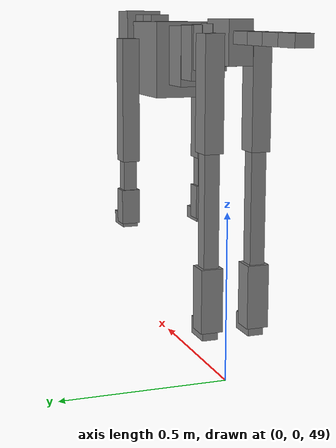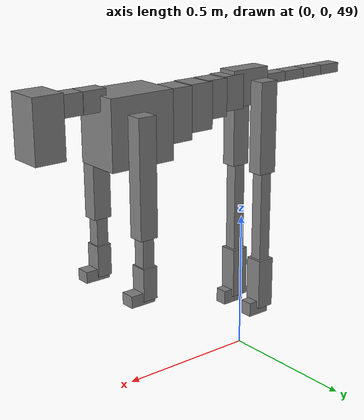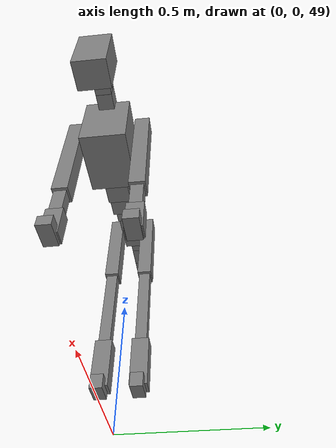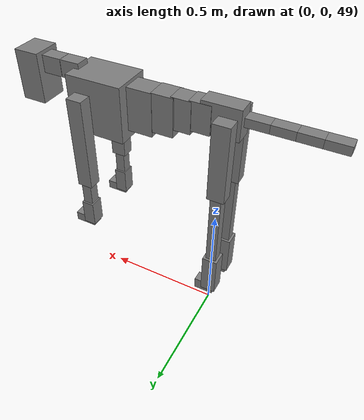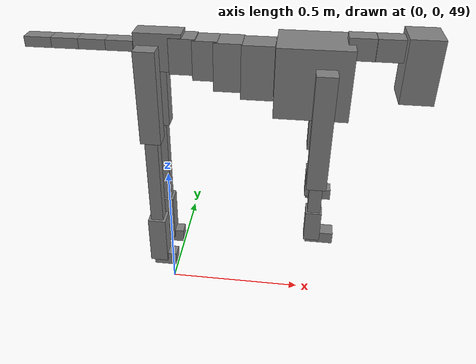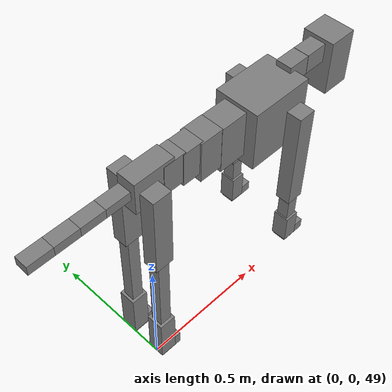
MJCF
<mujoco model="dog">

    <default>
        <joint armature="0.02" stiffness="1" damping="0.2" limited="true"/>
        <geom condim="3" friction="1 0.05 0.05" margin="0.01"/>
        <motor ctrllimited="true" ctrlrange="-1.0 1.0" forcelimited="true" gear="50"/>
    </default>

    <compiler inertiafromgeom="true" angle="radian"/>

    <option timestep="0.016" iterations="50" tolerance="1e-10" solver="Newton" jacobian="dense" cone="pyramidal"/>

    <size nconmax="20000" njmax="60000" nstack="5000000"/>
    <visual>
        <map force="0.1" zfar="30"/>
        <rgba haze="0.15 0.25 0.35 1"/>
        <quality shadowsize="2048"/>
        <global offwidth="800" offheight="800"/>
    </visual>

    <asset>
        <texture type="skybox" builtin="gradient" rgb1="0.3 0.5 0.7" rgb2="0 0 0" width="512" height="512"/>
        <texture name="texplane" type="2d" builtin="checker" rgb1=".2 .3 .4" rgb2=".1 0.15 0.2" width="512" height="512"
                 mark="cross" markrgb=".8 .8 .8"/>
        <texture name="texgeom" type="cube" builtin="flat" mark="cross" width="127" height="1278" rgb1="0.8 0.6 0.4"
                 rgb2="0.8 0.6 0.4" markrgb="1 1 1" random="0.01"/>

        <material name="matplane" reflectance="0.3" texture="texplane" texrepeat="1 1" texuniform="true"/>
        <material name="matgeom" texture="texgeom" texuniform="true" rgba="0.8 0.6 .4 1"/>
    </asset>

    <worldbody>
        <geom name="floor" pos="0 0 0" size="0 0 .25" type="plane" material="matplane" condim="3"/>

        <light directional="false" diffuse=".2 .2 .2" specular="0 0 0" pos="0 0 5" dir="0 0 -1" castshadow="false"/>
        <light mode="targetbodycom" target="torso" directional="false" diffuse=".8 .8 .8" specular="0.3 0.3 0.3"
               pos="0 0 4.0" dir="0 0 -1"/>

        <body name="root" pos="0 0 50">
            <freejoint name="root_1"/>
            <geom type="box" pos="0 0 -0.02" size="0.0774  0.0358  0.063" density="2030"/>

            <body name="spine1" pos="0.054 0 0">
                <joint name="spine1_y" axis="0 1 0" range="0 0.7" limited="true"/>
                <geom type="box" pos="0.02375 0 -0.03" size="0.04375  0.0375  0.05985" density="2030"/>

                <body name="spine2" pos="0.0612 0 0">
                    <joint name="spine2_y" axis="0 1 0" range="-0.15 0.15" limited="true"/>
                    <geom type="box" pos="0.03555  0  -0.04" size="0.04055  0.039  0.06615" density="2030"/>

                    <body name="spine3" pos="0.0730 0 0">
                        <joint name="spine3_y" axis="0 1 0" range="-0.15 0.15" limited="true"/>
                        <geom type="box" pos="0.03555  0  -0.057" size="0.04555  0.0445  0.081" density="2030"/>

                        <body name="spine4" pos="0.0780 0 0">
                            <joint name="spine4_y" axis="0 1 0" range="-0.15 0.15" limited="true"/>
                            <geom type="box" pos="0.05265  0  -0.07" size="0.05265  0.045  0.09135" density="2030"/>

                            <body name="torso" pos="0.1082 0 0">
                                <joint name="torso_y" axis="0 1 0" range="-0.15 0.15" limited="true"/>
                                <geom type="box" pos="0.11925  0  -0.085" size="0.11925  0.085  0.11745"
                                      density="2030"/>

                                <body name="neck1" pos="0.2160  0   0.0180">
                                    <joint name="neck1_y" axis="0 1 0" range="-1.2  -1" limited="true"/>
                                    <geom type="box" pos="0.0423  0  0" size="0.0423  0.03  0.036" density="2325"/>

                                    <body name="neck2" pos="0.0853  0  0">
                                        <joint name="neck2_y" axis="0 1 0" range="0.1  0" limited="true"/>
                                        <geom type="box" pos="0.0423  0  0" size="0.0423  0.03  0.036" density="2325"/>

                                        <body name="head" pos="0.0853  0  0">
                                            <joint name="head_y" axis="0 1 0" range="-0.3  -0.2" limited="true"/>
                                            <geom type="box" pos="0.0531  0  -0.055" size="0.0531  0.06  0.1044"
                                                  density="4030"/>

                                        </body>
                                    </body>
                                </body>

                                <body name="front_shoulder" pos="0.156  0   -0.0480">
                                    <joint name="front_shoulder_y" axis="0 1 0" range="-1 1.5" limited="true"/>
                                    <geom type="box" pos="0 0.13 -0.1718" size="0.0327  0.0280  0.1985" density="1158"/>
                                    <geom type="box" pos="0 -0.13 -0.1718" size="0.0327  0.0280  0.1985"
                                          density="1158"/>

                                    <body name="front_elbow" pos="0  0  -0.3436">
                                        <joint name="front_elbow_y" axis="0 1 0" range="-2 0" limited="true"/>
                                        <geom type="box" pos="0 0.13 -0.0674" size="0.0215  0.0220  0.0674"
                                              density="1081"/>
                                        <geom type="box" pos="0 -0.13 -0.0674" size="0.0215  0.0220  0.0674"
                                              density="1081"/>

                                        <body name="front_wrist" pos="0  0  -0.1348">
                                            <joint name="front_wrist_y" axis="0 1 0" range="-0.2 0" limited="true"/>
                                            <geom type="box" pos="0 0.13 -0.0423" size="0.0266  0.0296  0.0555"
                                                  density="1664"/>
                                            <geom type="box" pos="0 -0.13 -0.0423" size="0.0266  0.0296  0.0555"
                                                  density="1664"/>

                                            <body name="front_finger_end" pos="0  0  -0.0847">
                                                <joint name="front_finger_y" axis="0 1 0" range="-0.4 1"
                                                       limited="true"/>
                                                <geom type="box" pos="0.0251  0.13  -0.0052"
                                                      size="0.0461  0.0251  0.0202" density="1515"/>
                                                <geom type="box" pos="0.0251  -0.13  -0.0052"
                                                      size="0.0461  0.0251  0.0202" density="1515"/>

                                            </body>

                                        </body>
                                    </body>
                                </body>

                            </body>
                        </body>
                    </body>
                </body>
            </body>

            <body name="back_hip" pos="-0.03 0 -0.018">
                <joint name="back_hip_y" axis="0 1 0" range="-1.5 0.3" limited="true"/>
                <geom type="box" pos="0 0.07 -0.1404" size="0.0354  0.0278  0.1632" density="1154"/>
                <geom type="box" pos="0 -0.07 -0.1404" size="0.0354  0.0278  0.1632" density="1154"/>

                <body name="back_knee" pos="0  0  -0.2807">
                    <joint name="back_knee_y" axis="0 1 0" range="0 2.8" limited="true"/>
                    <geom type="box" pos="0 0.07 -0.1787" size="0.0224  0.0221  0.1943" density="1227"/>
                    <geom type="box" pos="0 -0.07 -0.1787" size="0.0224  0.0221  0.1943" density="1227"/>

                    <body name="back_ankle" pos="0  0  -0.3575">
                        <joint name="back_ankle_y" axis="0 1 0" range="-2.2 0" limited="true"/>
                        <geom type="box" pos="0 0.07 -0.0809" size="0.0322  0.0322  0.0921" density="1284"/>
                        <geom type="box" pos="0 -0.07 -0.0809" size="0.0322  0.0322  0.0921" density="1284"/>

                        <body name="back_toe_end" pos="0  0  -0.1618">
                            <joint name="back_toe_y" axis="0 1 0" range="-0.4 1" limited="true"/>
                            <geom type="box" pos="0.0230  0.07  -0.0109" size="0.0422  0.0230  0.0259" density="1515"/>
                            <geom type="box" pos="0.0230  -0.07  -0.0109" size="0.0422  0.0230  0.0259" density="1515"/>

                        </body>
                    </body>
                </body>
            </body>

            <body name="tail1" pos="-0.074 0 -0.006">
                <joint name="tail1_y" axis="0 1 0" range="-0.2 0.2" limited="true"/>
                <geom type="box" pos="-0.0536  0  0" size="0.045  0.025  0.0175" density="1587"/>

                <body name="tail2" pos="-0.09 0 0">
                    <joint name="tail2_y" axis="0 1 0" range="-0.2 0.2" limited="true"/>
                    <geom type="box" pos="-0.0536  0  0" size="0.045  0.025  0.0175" density="1587"/>

                    <body name="tail3" pos="-0.09 0 0">
                        <joint name="tail3_y" axis="0 1 0" range="-0.2 0.2" limited="true"/>
                        <geom type="box" pos="-0.0536  0  0" size="0.045  0.025  0.0175" density="1587"/>

                        <body name="tail4" pos="-0.09 0 0">
                            <joint name="tail4_y" axis="0 1 0" range="-0.2 0.2" limited="true"/>
                            <geom type="box" pos="-0.0536  0  0" size="0.045  0.025  0.0175" density="1587"/>

                        </body>
                    </body>
                </body>
            </body>
        </body>
    </worldbody>

    <actuator>
        <motor joint="spine1_y" forcerange="-150 150     "/>
        <motor joint="spine2_y" forcerange="-150 150     "/>
        <motor joint="spine3_y" forcerange="-150 150     "/>
        <motor joint="spine4_y" forcerange="-150 150     "/>
        <motor joint="torso_y" forcerange="-150 150     "/>
        <motor joint="neck1_y" forcerange="-100 100       "/>
        <motor joint="neck2_y" forcerange="-100 100       "/>
        <motor joint="head_y" forcerange="-150 150       "/>
        <motor joint="front_shoulder_y" forcerange="-164.30 122.16"/>
        <motor joint="front_elbow_y" forcerange="-122.93 137.12"/>
        <motor joint="front_wrist_y" forcerange="-115.06 121.72"/>
        <motor joint="front_finger_y" forcerange="-68.82 25.26"/>
        <motor joint="back_hip_y" forcerange="-314.54 256.05"/>
        <motor joint="back_knee_y" forcerange="-296.02 225.30"/>
        <motor joint="back_angle_y" forcerange="-198.53 216.01"/>
        <motor joint="back_toe_y" forcerange="-59.18 45.11"/>
        <motor joint="tail1_y" forcerange="-50 50     "/>
        <motor joint="tail2_y" forcerange="-50 50     "/>
        <motor joint="tail3_y" forcerange="-50 50     "/>
        <motor joint="tail4_y" forcerange="-50 50     "/>
    </actuator>
</mujoco>
